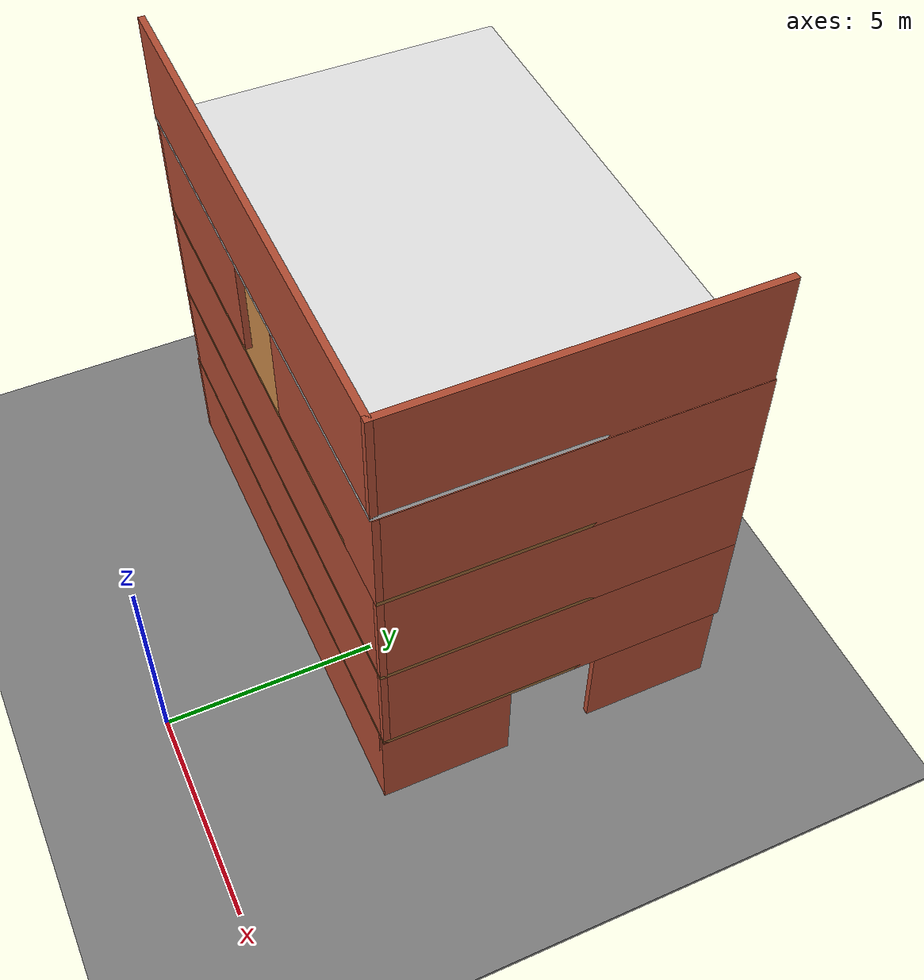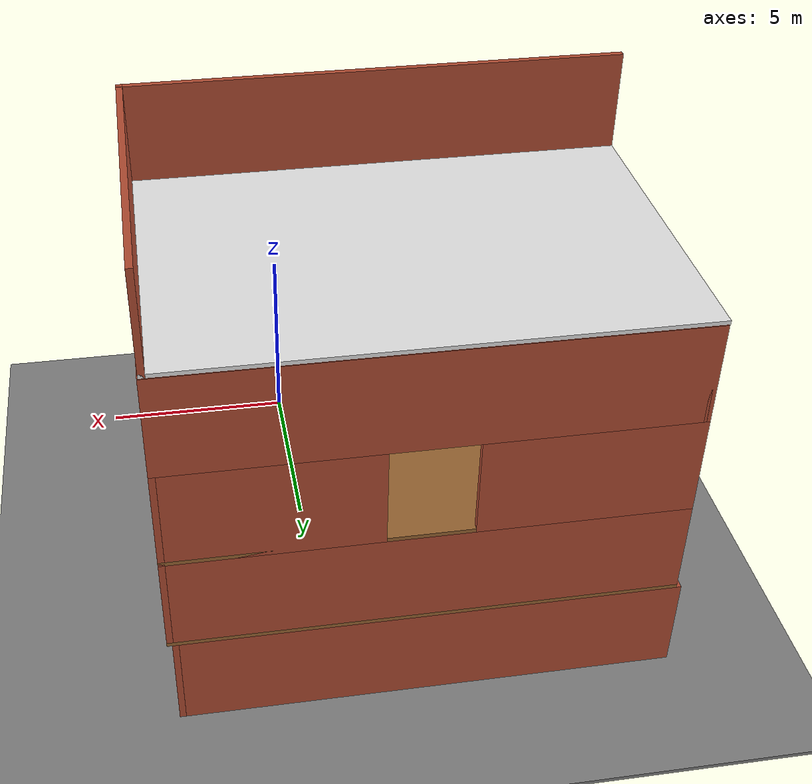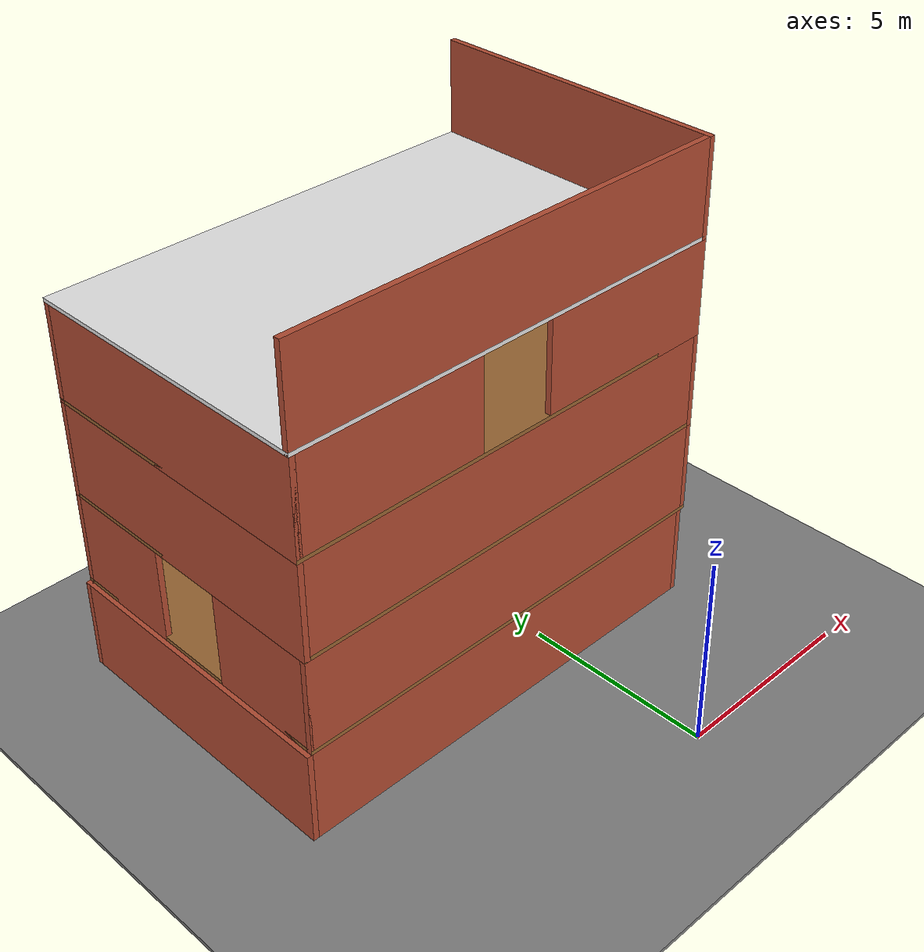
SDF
<sdf version="1.9">
 <world name="default">
  <physics name="1ms" type="ignored">
   <max_step_size>0.004</max_step_size>
   <real_time_factor>1.0</real_time_factor>
   <real_time_update_rate>100</real_time_update_rate>
  </physics>
  <plugin filename="gz-sim-physics-system" name="gz::sim::systems::Physics"/>
  <plugin filename="gz-sim-user-commands-system" name="gz::sim::systems::UserCommands"/>
  <plugin filename="gz-sim-scene-broadcaster-system" name="gz::sim::systems::SceneBroadcaster"/>
  <scene>
   <ambient>0.4 0.4 0.4</ambient>
   <background>0.25 0.25 0.25</background>
   <sky><sunset>20</sunset></sky>
  </scene>
  <light type="directional" name="sun">
   <cast_shadows>false</cast_shadows>
   <pose>0 0 10 0 0 0</pose>
   <diffuse>0.8 0.8 0.8 1</diffuse>
   <specular>0.2 0.2 0.2 1</specular>
   <attenuation>
    <range>1000</range>
    <constant>0.9</constant>
    <linear>0.01</linear>
    <quadratic>0.001</quadratic>
   </attenuation>
   <direction>-0.5 0.1 -0.9</direction>
  </light>
  <model name="ground_plane">
   <static>true</static>
   <link name="link">
    <collision name="collision">
     <geometry><plane><normal>0 0 1</normal><size>100 100</size></plane></geometry>
    </collision>
    <visual name="visual">
     <geometry><plane><normal>0 0 1</normal><size>100 100</size></plane></geometry>
     <material>
      <ambient>0.8 0.8 0.8 1</ambient>
      <diffuse>0.8 0.8 0.8 1</diffuse>
      <specular>0.8 0.8 0.8 1</specular>
     </material>
    </visual>
   </link>
  </model>
  <model name="tower">
   <pose>5 5 0 0 0 0</pose>
   <include><static>true</static><uri>model://tower</uri></include>
  </model>
  <model name="asphalt_plane">
   <static>1</static>
   <link name="link">
    <collision name="collision"><geometry><box><size>50 50 0.1</size></box></geometry></collision>
    <visual name="visual">
     <cast_shadows>0</cast_shadows>
     <geometry><box><size>50 50 0.1</size></box></geometry>
     <material>
      <ambient>0.5 0.5 0.5 1</ambient>
      <diffuse>0.5 0.5 0.5 1</diffuse>
      <specular>0.1 0.1 0.1 1</specular>
     </material>
    </visual>
   </link>
  </model>
  <model name="unit_box_0">
   <pose>0.16 4.42 1.0 1.570755 -0 0</pose>
   <link name="link">
    <inertial>
     <mass>1</mass>
     <inertia>
      <ixx>0.166667</ixx>
      <ixy>0</ixy>
      <ixz>0</ixz>
      <iyy>0.166667</iyy>
      <iyz>0</iyz>
      <izz>0.166667</izz>
     </inertia>
    </inertial>
    <collision name="collision"><geometry><box><size>1 2.0 0.3</size></box></geometry></collision>
    <visual name="visual">
     <geometry><box><size>1 2.0 0.3</size></box></geometry>
     <material>
      <ambient>0.7 0.7 0.7 1</ambient>
      <diffuse>0.7 0.7 0.7 1</diffuse>
      <specular>0.1 0.1 0.1 1</specular>
     </material>
    </visual>
   </link>
  </model>
  <model name="unit_box_1">
   <pose>-7.155 4.672 3.60001 1.570755 -0 0</pose>
   <link name="link">
    <inertial>
     <mass>1</mass>
     <inertia>
      <ixx>0.166667</ixx>
      <ixy>0</ixy>
      <ixz>0</ixz>
      <iyy>0.166667</iyy>
      <iyz>0</iyz>
      <izz>0.166667</izz>
     </inertia>
    </inertial>
    <collision name="collision"><geometry><box><size>1 2.0 0.5</size></box></geometry></collision>
    <visual name="visual">
     <geometry><box><size>1 2.0 0.5</size></box></geometry>
     <material>
      <ambient>0.7 0.7 0.7 1</ambient>
      <diffuse>0.7 0.7 0.7 1</diffuse>
      <specular>0.1 0.1 0.1 1</specular>
     </material>
    </visual>
   </link>
  </model>
 </world>
</sdf>

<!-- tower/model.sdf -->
<sdf version='1.8'>
  <model name='tower'>
    <pose>-6.62818 2.78501 0 0 -0 0</pose>
    <link name='Floor_0'>
      <collision name='Floor_0_Collision'>
        <geometry>
          <box>
            <size>12 8.00013 0.1</size>
          </box>
        </geometry>
        <pose>0 0 0.05 0 -0 0</pose>
      </collision>
      <visual name='Floor_0_Visual'>
        <pose>0 0 0.05 0 -0 0</pose>
        <geometry>
          <box>
            <size>12 8.00013 0.1</size>
          </box>
        </geometry>
        <material>
          <ambient>0.6 0.4 0.2 1</ambient>
          <diffuse>0.6 0.4 0.2 1</diffuse>
          <specular>0.1 0.1 0.1 1</specular>
        </material>
        <meta>
          <layer>1</layer>
        </meta>
      </visual>
      <pose>-0.508178 0.009968 2.5 0 -0 0</pose>
    </link>
    <link name='Floor_1'>
      <collision name='Floor_1_Collision'>
        <geometry>
          <box>
            <size>12 8 0.1</size>
          </box>
        </geometry>
        <pose>0 0 0.05 0 -0 0</pose>
      </collision>
      <visual name='Floor_1_Visual'>
        <pose>0 0 0.05 0 -0 0</pose>
        <geometry>
          <box>
            <size>12 8 0.1</size>
          </box>
        </geometry>
        <material>
          <ambient>0.6 0.4 0.2 1</ambient>
          <diffuse>0.6 0.4 0.2 1</diffuse>
          <specular>0.1 0.1 0.1 1</specular>
        </material>
        <meta>
          <layer>2</layer>
        </meta>
      </visual>
      <pose>-0.508178 0.009968 5 0 -0 0</pose>
    </link>
    <link name='Floor_2'>
      <collision name='Floor_2_Collision'>
        <geometry>
          <box>
            <size>12 8 0.1</size>
          </box>
        </geometry>
        <pose>0 0 0.05 0 -0 0</pose>
      </collision>
      <visual name='Floor_2_Visual'>
        <pose>0 0 0.05 0 -0 0</pose>
        <geometry>
          <box>
            <size>12 8 0.1</size>
          </box>
        </geometry>
        <material>
          <ambient>0.6 0.4 0.2 1</ambient>
          <diffuse>0.6 0.4 0.2 1</diffuse>
          <specular>0.1 0.1 0.1 1</specular>
        </material>
        <meta>
          <layer>3</layer>
        </meta>
      </visual>
      <pose>-0.508178 0.009968 7.5 0 -0 0</pose>
    </link>
    <link name='Floor_4'>
      <collision name='Floor_4_Collision'>
        <geometry>
          <box>
            <size>12 8 0.1</size>
          </box>
        </geometry>
        <pose>0 0 0.05 0 -0 0</pose>
      </collision>
      <visual name='Floor_4_Visual'>
        <pose>0 0 0.05 0 -0 0</pose>
        <geometry>
          <box>
            <size>12 8 0.1</size>
          </box>
        </geometry>
        <material>
          <ambient>0.9 0.9 0.9 1</ambient>
          <diffuse>0.9 0.9 0.9 1</diffuse>
          <specular>0.2 0.2 0.2 1</specular>
        </material>
        <meta>
          <layer>4</layer>
        </meta>
      </visual>
      <pose>-0.528178 -0.010032 10 0 -0 0</pose>
    </link>
    <link name='Wall_0'>
      <collision name='Wall_0_Collision'>
        <geometry>
          <box>
            <size>12 0.15 2.5</size>
          </box>
        </geometry>
        <pose>0 0 1.25 0 -0 0</pose>
      </collision>
      <visual name='Wall_0_Visual'>
        <pose>0 0 1.25 0 -0 0</pose>
        <geometry>
          <box>
            <size>12 0.15 2.5</size>
          </box>
        </geometry>
        <material>
          <ambient>0.7 0.3 0.2 1</ambient>
          <diffuse>0.7 0.3 0.2 1</diffuse>
          <specular>0.1 0.1 0.1 1</specular>
        </material>
        <meta>
          <layer>0</layer>
        </meta>
      </visual>
      <pose>-0.628178 3.93497 0 0 -0 3.14159</pose>
    </link>
    <link name='Wall_10'>
      <collision name='Wall_10_Collision'>
        <geometry>
          <box>
            <size>12 0.15 2.5</size>
          </box>
        </geometry>
        <pose>0 0 1.25 0 -0 0</pose>
      </collision>
      <visual name='Wall_10_Visual'>
        <pose>0 0 1.25 0 -0 0</pose>
        <geometry>
          <box>
            <size>12 0.15 2.5</size>
          </box>
        </geometry>
        <material>
          <ambient>0.7 0.3 0.2 1</ambient>
          <diffuse>0.7 0.3 0.2 1</diffuse>
          <specular>0.1 0.1 0.1 1</specular>
        </material>
        <meta>
          <layer>1</layer>
        </meta>
      </visual>
      <pose>-0.508178 -3.91503 2.5 0 -0 0</pose>
    </link>
    <link name='Wall_12'>
      <collision name='Wall_12_Collision'>
        <geometry>
          <box>
            <size>8 0.15 2.5</size>
          </box>
        </geometry>
        <pose>0 0 1.25 0 -0 0</pose>
      </collision>
      <visual name='Wall_12_Visual'>
        <pose>0 0 1.25 0 -0 0</pose>
        <geometry>
          <box>
            <size>8 0.15 2.5</size>
          </box>
        </geometry>
        <material>
          <ambient>0.7 0.3 0.2 1</ambient>
          <diffuse>0.7 0.3 0.2 1</diffuse>
          <specular>0.1 0.1 0.1 1</specular>
        </material>
        <meta>
          <layer>1</layer>
        </meta>
      </visual>
      <pose>5.41682 0.009968 2.5 0 -0 -1.5708</pose>
    </link>
    <link name='Wall_13'>
      <collision name='Wall_13_Collision'>
        <geometry>
          <box>
            <size>3 0.15 2.5</size>
          </box>
        </geometry>
        <pose>0 0 1.25 0 -0 0</pose>
      </collision>
      <visual name='Wall_13_Visual'>
        <pose>0 0 1.25 0 -0 0</pose>
        <geometry>
          <box>
            <size>3 0.15 2.5</size>
          </box>
        </geometry>
        <material>
          <ambient>0.7 0.3 0.2 1</ambient>
          <diffuse>0.7 0.3 0.2 1</diffuse>
          <specular>0.1 0.1 0.1 1</specular>
        </material>
        <meta>
          <layer>1</layer>
        </meta>
      </visual>
      <pose>-6.43318 2.50997 2.5 0 -0 -1.5708</pose>
    </link>
    <link name='Wall_15'>
      <collision name='Wall_15_Collision'>
        <geometry>
          <box>
            <size>3 0.15 2.5</size>
          </box>
        </geometry>
        <pose>0 0 1.25 0 -0 0</pose>
      </collision>
      <visual name='Wall_15_Visual'>
        <pose>0 0 1.25 0 -0 0</pose>
        <geometry>
          <box>
            <size>3 0.15 2.5</size>
          </box>
        </geometry>
        <material>
          <ambient>0.7 0.3 0.2 1</ambient>
          <diffuse>0.7 0.3 0.2 1</diffuse>
          <specular>0.1 0.1 0.1 1</specular>
        </material>
        <meta>
          <layer>1</layer>
        </meta>
      </visual>
      <pose>-6.43318 -2.49003 2.5 0 -0 1.5708</pose>
    </link>
    <link name='Wall_18'>
      <collision name='Wall_18_Collision'>
        <geometry>
          <box>
            <size>12 0.15 2.5</size>
          </box>
        </geometry>
        <pose>0 0 1.25 0 -0 0</pose>
      </collision>
      <visual name='Wall_18_Visual'>
        <pose>0 0 1.25 0 -0 0</pose>
        <geometry>
          <box>
            <size>12 0.15 2.5</size>
          </box>
        </geometry>
        <material>
          <ambient>0.7 0.3 0.2 1</ambient>
          <diffuse>0.7 0.3 0.2 1</diffuse>
          <specular>0.1 0.1 0.1 1</specular>
        </material>
        <meta>
          <layer>2</layer>
        </meta>
      </visual>
      <pose>-0.508178 -3.91503 5 0 -0 0</pose>
    </link>
    <link name='Wall_19'>
      <collision name='Wall_19_Collision'>
        <geometry>
          <box>
            <size>8 0.15 2.5</size>
          </box>
        </geometry>
        <pose>0 0 1.25 0 -0 0</pose>
      </collision>
      <visual name='Wall_19_Visual'>
        <pose>0 0 1.25 0 -0 0</pose>
        <geometry>
          <box>
            <size>8 0.15 2.5</size>
          </box>
        </geometry>
        <material>
          <ambient>0.7 0.3 0.2 1</ambient>
          <diffuse>0.7 0.3 0.2 1</diffuse>
          <specular>0.1 0.1 0.1 1</specular>
        </material>
        <meta>
          <layer>2</layer>
        </meta>
      </visual>
      <pose>5.41682 0.009969 5 0 -0 -1.5708</pose>
    </link>
    <link name='Wall_2'>
      <collision name='Wall_2_Collision'>
        <geometry>
          <box>
            <size>8 0.15 2.5</size>
          </box>
        </geometry>
        <pose>0 0 1.25 0 -0 0</pose>
      </collision>
      <visual name='Wall_2_Visual'>
        <pose>0 0 1.25 0 -0 0</pose>
        <geometry>
          <box>
            <size>8 0.15 2.5</size>
          </box>
        </geometry>
        <material>
          <ambient>0.7 0.3 0.2 1</ambient>
          <diffuse>0.7 0.3 0.2 1</diffuse>
          <specular>0.1 0.1 0.1 1</specular>
        </material>
        <meta>
          <layer>0</layer>
        </meta>
      </visual>
      <pose>-6.55318 0.009968 0 0 -0 -1.5708</pose>
    </link>
    <link name='Wall_20'>
      <collision name='Wall_20_Collision'>
        <geometry>
          <box>
            <size>8 0.15 2.5</size>
          </box>
        </geometry>
        <pose>0 0 1.25 0 -0 0</pose>
      </collision>
      <visual name='Wall_20_Visual'>
        <pose>0 0 1.25 0 -0 0</pose>
        <geometry>
          <box>
            <size>8 0.15 2.5</size>
          </box>
        </geometry>
        <material>
          <ambient>0.7 0.3 0.2 1</ambient>
          <diffuse>0.7 0.3 0.2 1</diffuse>
          <specular>0.1 0.1 0.1 1</specular>
        </material>
        <meta>
          <layer>2</layer>
        </meta>
      </visual>
      <pose>-6.43318 0.009968 5 0 -0 -1.5708</pose>
    </link>
    <link name='Wall_24'>
      <collision name='Wall_24_Collision'>
        <geometry>
          <box>
            <size>5 0.15 2.5</size>
          </box>
        </geometry>
        <pose>0 0 1.25 0 -0 0</pose>
      </collision>
      <visual name='Wall_24_Visual'>
        <pose>0 0 1.25 0 -0 0</pose>
        <geometry>
          <box>
            <size>5 0.15 2.5</size>
          </box>
        </geometry>
        <material>
          <ambient>0.7 0.3 0.2 1</ambient>
          <diffuse>0.7 0.3 0.2 1</diffuse>
          <specular>0.1 0.1 0.1 1</specular>
        </material>
        <meta>
          <layer>2</layer>
        </meta>
      </visual>
      <pose>-4.00818 3.93497 5 0 -0 0</pose>
    </link>
    <link name='Wall_26'>
      <collision name='Wall_26_Collision'>
        <geometry>
          <box>
            <size>5 0.15 2.5</size>
          </box>
        </geometry>
        <pose>0 0 1.25 0 -0 0</pose>
      </collision>
      <visual name='Wall_26_Visual'>
        <pose>0 0 1.25 0 -0 0</pose>
        <geometry>
          <box>
            <size>5 0.15 2.5</size>
          </box>
        </geometry>
        <material>
          <ambient>0.7 0.3 0.2 1</ambient>
          <diffuse>0.7 0.3 0.2 1</diffuse>
          <specular>0.1 0.1 0.1 1</specular>
        </material>
        <meta>
          <layer>2</layer>
        </meta>
      </visual>
      <pose>2.99182 3.93497 5 0 -0 3.14159</pose>
    </link>
    <link name='Wall_29'>
      <collision name='Wall_29_Collision'>
        <geometry>
          <box>
            <size>8 0.15 2.5</size>
          </box>
        </geometry>
        <pose>0 0 1.25 0 -0 0</pose>
      </collision>
      <visual name='Wall_29_Visual'>
        <pose>0 0 1.25 0 -0 0</pose>
        <geometry>
          <box>
            <size>8 0.15 2.5</size>
          </box>
        </geometry>
        <material>
          <ambient>0.7 0.3 0.2 1</ambient>
          <diffuse>0.7 0.3 0.2 1</diffuse>
          <specular>0.1 0.1 0.1 1</specular>
        </material>
        <meta>
          <layer>3</layer>
        </meta>
      </visual>
      <pose>5.41682 0.009968 7.5 0 -0 -1.5708</pose>
    </link>
    <link name='Wall_3'>
      <collision name='Wall_3_Collision'>
        <geometry>
          <box>
            <size>12 0.15 2.5</size>
          </box>
        </geometry>
        <pose>0 0 1.25 0 -0 0</pose>
      </collision>
      <visual name='Wall_3_Visual'>
        <pose>0 0 1.25 0 -0 0</pose>
        <geometry>
          <box>
            <size>12 0.15 2.5</size>
          </box>
        </geometry>
        <material>
          <ambient>0.7 0.3 0.2 1</ambient>
          <diffuse>0.7 0.3 0.2 1</diffuse>
          <specular>0.1 0.1 0.1 1</specular>
        </material>
        <meta>
          <layer>0</layer>
        </meta>
      </visual>
      <pose>-0.628178 -3.91503 0 0 -0 0</pose>
    </link>
    <link name='Wall_30'>
      <collision name='Wall_30_Collision'>
        <geometry>
          <box>
            <size>8 0.15 2.5</size>
          </box>
        </geometry>
        <pose>0 0 1.25 0 -0 0</pose>
      </collision>
      <visual name='Wall_30_Visual'>
        <pose>0 0 1.25 0 -0 0</pose>
        <geometry>
          <box>
            <size>8 0.15 2.5</size>
          </box>
        </geometry>
        <material>
          <ambient>0.7 0.3 0.2 1</ambient>
          <diffuse>0.7 0.3 0.2 1</diffuse>
          <specular>0.1 0.1 0.1 1</specular>
        </material>
        <meta>
          <layer>3</layer>
        </meta>
      </visual>
      <pose>-6.43318 0.009969 7.5 0 -0 -1.5708</pose>
    </link>
    <link name='Wall_33'>
      <collision name='Wall_33_Collision'>
        <geometry>
          <box>
            <size>12 0.15 2.5</size>
          </box>
        </geometry>
        <pose>0 0 1.25 0 -0 0</pose>
      </collision>
      <visual name='Wall_33_Visual'>
        <pose>0 0 1.25 0 -0 0</pose>
        <geometry>
          <box>
            <size>12 0.15 2.5</size>
          </box>
        </geometry>
        <material>
          <ambient>0.7 0.3 0.2 1</ambient>
          <diffuse>0.7 0.3 0.2 1</diffuse>
          <specular>0.1 0.1 0.1 1</specular>
        </material>
        <meta>
          <layer>3</layer>
        </meta>
      </visual>
      <pose>-0.508178 3.93497 7.5 0 -0 0</pose>
    </link>
    <link name='Wall_35'>
      <collision name='Wall_35_Collision'>
        <geometry>
          <box>
            <size>5 0.15 2.5</size>
          </box>
        </geometry>
        <pose>0 0 1.25 0 -0 0</pose>
      </collision>
      <visual name='Wall_35_Visual'>
        <pose>0 0 1.25 0 -0 0</pose>
        <geometry>
          <box>
            <size>5 0.15 2.5</size>
          </box>
        </geometry>
        <material>
          <ambient>0.7 0.3 0.2 1</ambient>
          <diffuse>0.7 0.3 0.2 1</diffuse>
          <specular>0.1 0.1 0.1 1</specular>
        </material>
        <meta>
          <layer>3</layer>
        </meta>
      </visual>
      <pose>-4.00818 -3.91503 7.5 0 -0 0</pose>
    </link>
    <link name='Wall_37'>
      <collision name='Wall_37_Collision'>
        <geometry>
          <box>
            <size>5 0.15 2.5</size>
          </box>
        </geometry>
        <pose>0 0 1.25 0 -0 0</pose>
      </collision>
      <visual name='Wall_37_Visual'>
        <pose>0 0 1.25 0 -0 0</pose>
        <geometry>
          <box>
            <size>5 0.15 2.5</size>
          </box>
        </geometry>
        <material>
          <ambient>0.7 0.3 0.2 1</ambient>
          <diffuse>0.7 0.3 0.2 1</diffuse>
          <specular>0.1 0.1 0.1 1</specular>
        </material>
        <meta>
          <layer>3</layer>
        </meta>
      </visual>
      <pose>2.99182 -3.91503 7.5 0 -0 3.14159</pose>
    </link>
    <link name='Wall_4'>
      <collision name='Wall_4_Collision'>
        <geometry>
          <box>
            <size>3 0.15 2.5</size>
          </box>
        </geometry>
        <pose>0 0 1.25 0 -0 0</pose>
      </collision>
      <visual name='Wall_4_Visual'>
        <pose>0 0 1.25 0 -0 0</pose>
        <geometry>
          <box>
            <size>3 0.15 2.5</size>
          </box>
        </geometry>
        <material>
          <ambient>0.7 0.3 0.2 1</ambient>
          <diffuse>0.7 0.3 0.2 1</diffuse>
          <specular>0.1 0.1 0.1 1</specular>
        </material>
        <meta>
          <layer>0</layer>
        </meta>
      </visual>
      <pose>5.29682 -2.49003 0 0 -0 1.5708</pose>
    </link>
    <link name='Wall_51'>
      <collision name='Wall_51_Collision'>
        <geometry>
          <box>
            <size>12 0.15 2.5</size>
          </box>
        </geometry>
        <pose>0 0 1.25 0 -0 0</pose>
      </collision>
      <visual name='Wall_51_Visual'>
        <pose>0 0 1.25 0 -0 0</pose>
        <geometry>
          <box>
            <size>12 0.15 2.5</size>
          </box>
        </geometry>
        <material>
          <ambient>0.7 0.3 0.2 1</ambient>
          <diffuse>0.7 0.3 0.2 1</diffuse>
          <specular>0.1 0.1 0.1 1</specular>
        </material>
        <meta>
          <layer>4</layer>
        </meta>
      </visual>
      <pose>-0.528178 -3.93503 10 0 -0 0</pose>
    </link>
    <link name='Wall_53'>
      <collision name='Wall_53_Collision'>
        <geometry>
          <box>
            <size>8 0.15 2.5</size>
          </box>
        </geometry>
        <pose>0 0 1.25 0 -0 0</pose>
      </collision>
      <visual name='Wall_53_Visual'>
        <pose>0 0 1.25 0 -0 0</pose>
        <geometry>
          <box>
            <size>8 0.15 2.5</size>
          </box>
        </geometry>
        <material>
          <ambient>0.7 0.3 0.2 1</ambient>
          <diffuse>0.7 0.3 0.2 1</diffuse>
          <specular>0.1 0.1 0.1 1</specular>
        </material>
        <meta>
          <layer>4</layer>
        </meta>
      </visual>
      <pose>5.39682 -0.010032 10 0 -0 -1.5708</pose>
    </link>
    <link name='Wall_6'>
      <collision name='Wall_6_Collision'>
        <geometry>
          <box>
            <size>3 0.15 2.5</size>
          </box>
        </geometry>
        <pose>0 0 1.25 0 -0 0</pose>
      </collision>
      <visual name='Wall_6_Visual'>
        <pose>0 0 1.25 0 -0 0</pose>
        <geometry>
          <box>
            <size>3 0.15 2.5</size>
          </box>
        </geometry>
        <material>
          <ambient>0.7 0.3 0.2 1</ambient>
          <diffuse>0.7 0.3 0.2 1</diffuse>
          <specular>0.1 0.1 0.1 1</specular>
        </material>
        <meta>
          <layer>0</layer>
        </meta>
      </visual>
      <pose>5.29682 2.50997 0 0 -0 -1.5708</pose>
    </link>
    <link name='Wall_8'>
      <collision name='Wall_8_Collision'>
        <geometry>
          <box>
            <size>12 0.15 2.5</size>
          </box>
        </geometry>
        <pose>0 0 1.25 0 -0 0</pose>
      </collision>
      <visual name='Wall_8_Visual'>
        <pose>0 0 1.25 0 -0 0</pose>
        <geometry>
          <box>
            <size>12 0.15 2.5</size>
          </box>
        </geometry>
        <material>
          <ambient>0.7 0.3 0.2 1</ambient>
          <diffuse>0.7 0.3 0.2 1</diffuse>
          <specular>0.1 0.1 0.1 1</specular>
        </material>
        <meta>
          <layer>1</layer>
        </meta>
      </visual>
      <pose>-0.508178 3.93497 2.5 0 -0 3.14159</pose>
    </link>
    <static>1</static>
  </model>
</sdf>
